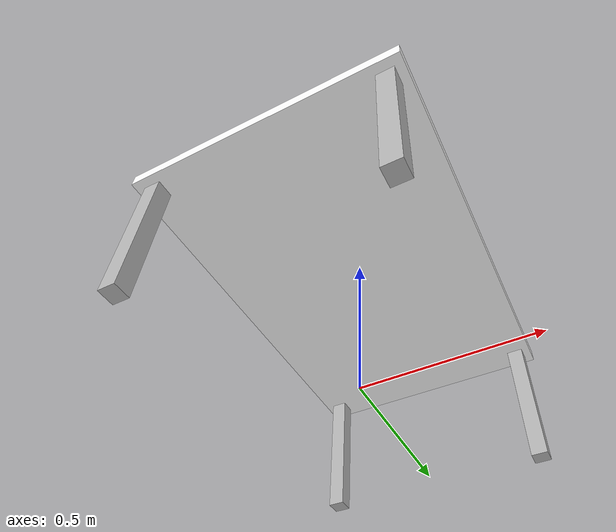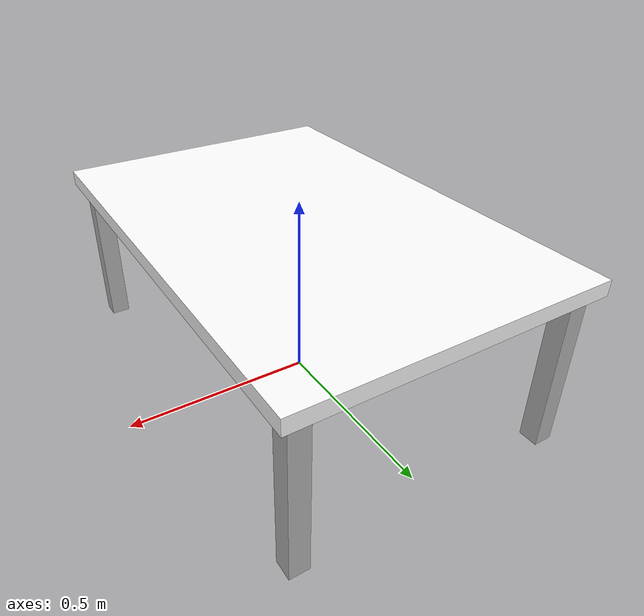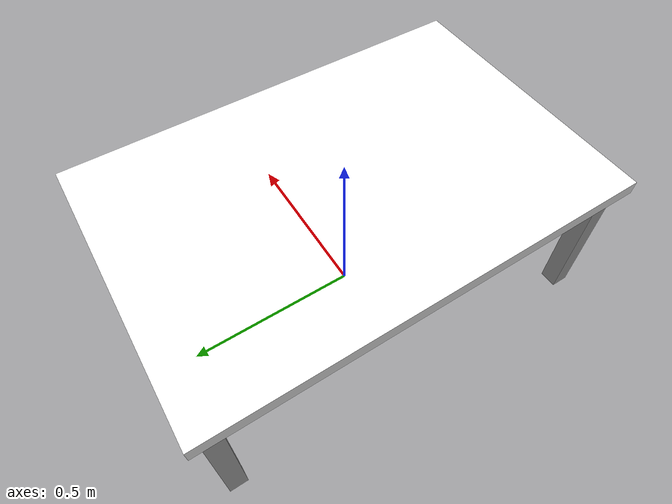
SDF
<?xml version="1.0"?>
<sdf version="1.6">
  <model name="table">
    <static>true</static>
    <link name="top">
      <pose>0 0 0.44 0 0 0</pose>
      <collision name="c"><geometry><box><size>0.8 1.2 0.04</size></box></geometry></collision>
      <visual name="v"><geometry><box><size>0.8 1.2 0.04</size></box></geometry>
        <material><ambient>1 1 1 1</ambient><diffuse>1 1 1 1</diffuse></material></visual>
    </link>
    <link name="leg1"><pose>0.35 0.55 0.21 0 0 0</pose>
      <collision name="c"><geometry><box><size>0.05 0.05 0.42</size></box></geometry></collision>
      <visual name="v"><geometry><box><size>0.05 0.05 0.42</size></box></geometry></visual></link>
    <link name="leg2"><pose>-0.35 0.55 0.21 0 0 0</pose>
      <collision name="c"><geometry><box><size>0.05 0.05 0.42</size></box></geometry></collision>
      <visual name="v"><geometry><box><size>0.05 0.05 0.42</size></box></geometry></visual></link>
    <link name="leg3"><pose>0.35 -0.55 0.21 0 0 0</pose>
      <collision name="c"><geometry><box><size>0.05 0.05 0.42</size></box></geometry></collision>
      <visual name="v"><geometry><box><size>0.05 0.05 0.42</size></box></geometry></visual></link>
    <link name="leg4"><pose>-0.35 -0.55 0.21 0 0 0</pose>
      <collision name="c"><geometry><box><size>0.05 0.05 0.42</size></box></geometry></collision>
      <visual name="v"><geometry><box><size>0.05 0.05 0.42</size></box></geometry></visual></link>
  </model>
</sdf>
